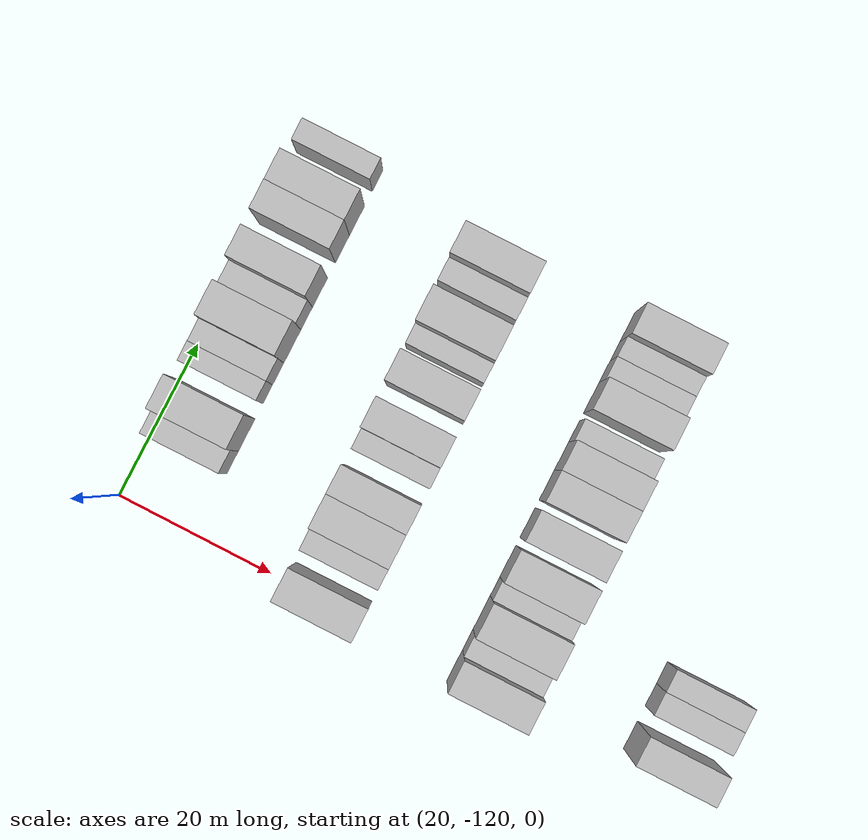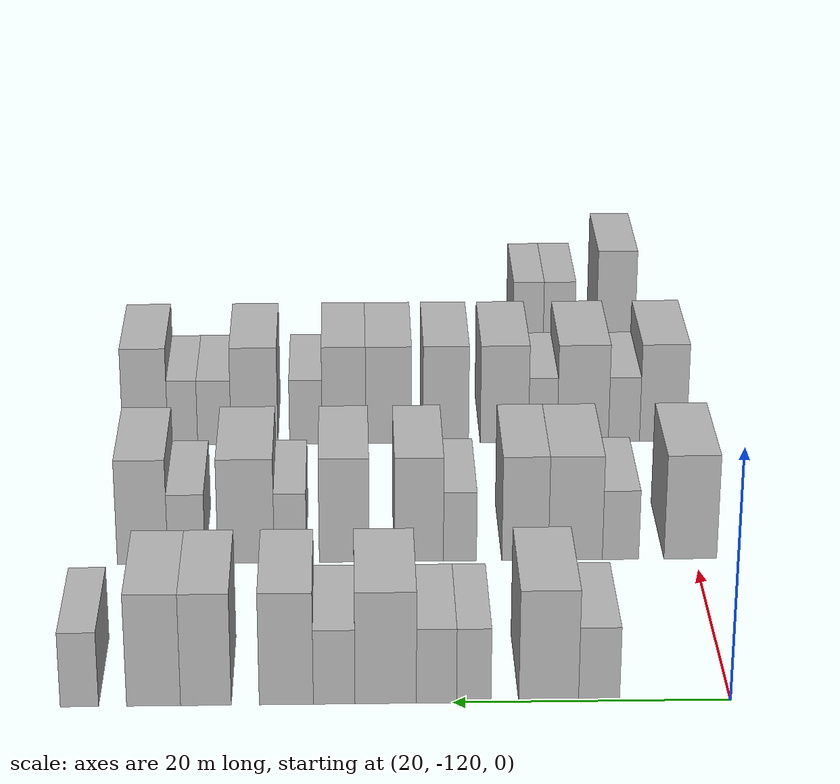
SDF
<sdf version="1.6">
 <world name="default">
  <model name="building_60">
   <static>1</static>
   <pose>25.0000 -110.4983 0 0.000000 0.000000 0.000000</pose>
   <link name="link">
    <pose>0 0 3.00 0 0 0</pose>
    <collision name="collision"><geometry><box><size>10.0000 2.9552 6.0000</size></box></geometry></collision>
    <visual name="visual">
     <cast_shadows>0</cast_shadows>
     <geometry><box><size>10.0000 2.9552 6.0000</size></box></geometry>
     <material>
      <script>
       <uri>model://HANNAS_wall/materials/scripts</uri>
       <uri>model://HANNAS_wall/materials/textures</uri>
       <name>vrc/HANNAS_wall</name>
      </script>
     </material>
    </visual>
   </link>
  </model>
  <model name="building_61">
   <static>1</static>
   <pose>25.0000 -106.8751 0 0.000000 0.000000 0.000000</pose>
   <link name="link">
    <pose>0 0 4.50 0 0 0</pose>
    <collision name="collision"><geometry><box><size>10.0000 4.2911 9.0000</size></box></geometry></collision>
    <visual name="visual">
     <cast_shadows>0</cast_shadows>
     <geometry><box><size>10.0000 4.2911 9.0000</size></box></geometry>
     <material>
      <script>
       <uri>model://HANNAS_wall/materials/scripts</uri>
       <uri>model://HANNAS_wall/materials/textures</uri>
       <name>vrc/HANNAS_wall</name>
      </script>
     </material>
    </visual>
   </link>
  </model>
  <model name="building_62">
   <static>1</static>
   <pose>25.0000 -101.4941 0 0.000000 0.000000 0.000000</pose>
   <link name="link">
    <pose>0 0 3.00 0 0 0</pose>
    <collision name="collision"><geometry><box><size>10.0000 2.4709 6.0000</size></box></geometry></collision>
    <visual name="visual">
     <cast_shadows>0</cast_shadows>
     <geometry><box><size>10.0000 2.4709 6.0000</size></box></geometry>
     <material>
      <script>
       <uri>model://HANNAS_wall/materials/scripts</uri>
       <uri>model://HANNAS_wall/materials/textures</uri>
       <name>vrc/HANNAS_wall</name>
      </script>
     </material>
    </visual>
   </link>
  </model>
  <model name="building_63">
   <static>1</static>
   <pose>25.0000 -98.8210 0 0.000000 0.000000 0.000000</pose>
   <link name="link">
    <pose>0 0 3.00 0 0 0</pose>
    <collision name="collision"><geometry><box><size>10.0000 2.8753 6.0000</size></box></geometry></collision>
    <visual name="visual">
     <cast_shadows>0</cast_shadows>
     <geometry><box><size>10.0000 2.8753 6.0000</size></box></geometry>
     <material>
      <script>
       <uri>model://HANNAS_wall/materials/scripts</uri>
       <uri>model://HANNAS_wall/materials/textures</uri>
       <name>vrc/HANNAS_wall</name>
      </script>
     </material>
    </visual>
   </link>
  </model>
  <model name="building_64">
   <static>1</static>
   <pose>25.0000 -95.1807 0 0.000000 0.000000 0.000000</pose>
   <link name="link">
    <pose>0 0 4.50 0 0 0</pose>
    <collision name="collision"><geometry><box><size>10.0000 4.4053 9.0000</size></box></geometry></collision>
    <visual name="visual">
     <cast_shadows>0</cast_shadows>
     <geometry><box><size>10.0000 4.4053 9.0000</size></box></geometry>
     <material>
      <script>
       <uri>model://HANNAS_wall/materials/scripts</uri>
       <uri>model://HANNAS_wall/materials/textures</uri>
       <name>vrc/HANNAS_wall</name>
      </script>
     </material>
    </visual>
   </link>
  </model>
  <model name="building_65">
   <static>1</static>
   <pose>25.0000 -91.4868 0 0.000000 0.000000 0.000000</pose>
   <link name="link">
    <pose>0 0 3.00 0 0 0</pose>
    <collision name="collision"><geometry><box><size>10.0000 2.9825 6.0000</size></box></geometry></collision>
    <visual name="visual">
     <cast_shadows>0</cast_shadows>
     <geometry><box><size>10.0000 2.9825 6.0000</size></box></geometry>
     <material>
      <script>
       <uri>model://HANNAS_wall/materials/scripts</uri>
       <uri>model://HANNAS_wall/materials/textures</uri>
       <name>vrc/HANNAS_wall</name>
      </script>
     </material>
    </visual>
   </link>
  </model>
  <model name="building_66">
   <static>1</static>
   <pose>25.0000 -88.0575 0 0.000000 0.000000 0.000000</pose>
   <link name="link">
    <pose>0 0 4.50 0 0 0</pose>
    <collision name="collision"><geometry><box><size>10.0000 3.8760 9.0000</size></box></geometry></collision>
    <visual name="visual">
     <cast_shadows>0</cast_shadows>
     <geometry><box><size>10.0000 3.8760 9.0000</size></box></geometry>
     <material>
      <script>
       <uri>model://HANNAS_wall/materials/scripts</uri>
       <uri>model://HANNAS_wall/materials/textures</uri>
       <name>vrc/HANNAS_wall</name>
      </script>
     </material>
    </visual>
   </link>
  </model>
  <model name="building_67">
   <static>1</static>
   <pose>25.0000 -82.3033 0 0.000000 0.000000 0.000000</pose>
   <link name="link">
    <pose>0 0 4.50 0 0 0</pose>
    <collision name="collision"><geometry><box><size>10.0000 3.6325 9.0000</size></box></geometry></collision>
    <visual name="visual">
     <cast_shadows>0</cast_shadows>
     <geometry><box><size>10.0000 3.6325 9.0000</size></box></geometry>
     <material>
      <script>
       <uri>model://HANNAS_wall/materials/scripts</uri>
       <uri>model://HANNAS_wall/materials/textures</uri>
       <name>vrc/HANNAS_wall</name>
      </script>
     </material>
    </visual>
   </link>
  </model>
  <model name="building_68">
   <static>1</static>
   <pose>25.0000 -78.5575 0 0.000000 0.000000 0.000000</pose>
   <link name="link">
    <pose>0 0 4.50 0 0 0</pose>
    <collision name="collision"><geometry><box><size>10.0000 3.8590 9.0000</size></box></geometry></collision>
    <visual name="visual">
     <cast_shadows>0</cast_shadows>
     <geometry><box><size>10.0000 3.8590 9.0000</size></box></geometry>
     <material>
      <script>
       <uri>model://HANNAS_wall/materials/scripts</uri>
       <uri>model://HANNAS_wall/materials/textures</uri>
       <name>vrc/HANNAS_wall</name>
      </script>
     </material>
    </visual>
   </link>
  </model>
  <model name="building_69">
   <static>1</static>
   <pose>25.0000 -73.2572 0 0.000000 0.000000 0.000000</pose>
   <link name="link">
    <pose>0 0 3.00 0 0 0</pose>
    <collision name="collision"><geometry><box><size>10.0000 2.7417 6.0000</size></box></geometry></collision>
    <visual name="visual">
     <cast_shadows>0</cast_shadows>
     <geometry><box><size>10.0000 2.7417 6.0000</size></box></geometry>
     <material>
      <script>
       <uri>model://HANNAS_wall/materials/scripts</uri>
       <uri>model://HANNAS_wall/materials/textures</uri>
       <name>vrc/HANNAS_wall</name>
      </script>
     </material>
    </visual>
   </link>
  </model>
  <model name="building_249">
   <static>1</static>
   <pose>47.0000 -119.5810 0 0.000000 0.000000 0.000000</pose>
   <link name="link">
    <pose>0 0 4.50 0 0 0</pose>
    <collision name="collision"><geometry><box><size>10.0000 4.1758 9.0000</size></box></geometry></collision>
    <visual name="visual">
     <cast_shadows>0</cast_shadows>
     <geometry><box><size>10.0000 4.1758 9.0000</size></box></geometry>
     <material>
      <script>
       <uri>model://HANNAS_wall/materials/scripts</uri>
       <uri>model://HANNAS_wall/materials/textures</uri>
       <name>vrc/HANNAS_wall</name>
      </script>
     </material>
    </visual>
   </link>
  </model>
  <model name="building_250">
   <static>1</static>
   <pose>47.0000 -114.0528 0 0.000000 0.000000 0.000000</pose>
   <link name="link">
    <pose>0 0 3.00 0 0 0</pose>
    <collision name="collision"><geometry><box><size>10.0000 2.8806 6.0000</size></box></geometry></collision>
    <visual name="visual">
     <cast_shadows>0</cast_shadows>
     <geometry><box><size>10.0000 2.8806 6.0000</size></box></geometry>
     <material>
      <script>
       <uri>model://HANNAS_wall/materials/scripts</uri>
       <uri>model://HANNAS_wall/materials/textures</uri>
       <name>vrc/HANNAS_wall</name>
      </script>
     </material>
    </visual>
   </link>
  </model>
  <model name="building_251">
   <static>1</static>
   <pose>47.0000 -110.4800 0 0.000000 0.000000 0.000000</pose>
   <link name="link">
    <pose>0 0 4.50 0 0 0</pose>
    <collision name="collision"><geometry><box><size>10.0000 4.2651 9.0000</size></box></geometry></collision>
    <visual name="visual">
     <cast_shadows>0</cast_shadows>
     <geometry><box><size>10.0000 4.2651 9.0000</size></box></geometry>
     <material>
      <script>
       <uri>model://HANNAS_wall/materials/scripts</uri>
       <uri>model://HANNAS_wall/materials/textures</uri>
       <name>vrc/HANNAS_wall</name>
      </script>
     </material>
    </visual>
   </link>
  </model>
  <model name="building_252">
   <static>1</static>
   <pose>47.0000 -106.5111 0 0.000000 0.000000 0.000000</pose>
   <link name="link">
    <pose>0 0 4.50 0 0 0</pose>
    <collision name="collision"><geometry><box><size>10.0000 3.6725 9.0000</size></box></geometry></collision>
    <visual name="visual">
     <cast_shadows>0</cast_shadows>
     <geometry><box><size>10.0000 3.6725 9.0000</size></box></geometry>
     <material>
      <script>
       <uri>model://HANNAS_wall/materials/scripts</uri>
       <uri>model://HANNAS_wall/materials/textures</uri>
       <name>vrc/HANNAS_wall</name>
      </script>
     </material>
    </visual>
   </link>
  </model>
  <model name="building_253">
   <static>1</static>
   <pose>47.0000 -101.3673 0 0.000000 0.000000 0.000000</pose>
   <link name="link">
    <pose>0 0 3.00 0 0 0</pose>
    <collision name="collision"><geometry><box><size>10.0000 2.6151 6.0000</size></box></geometry></collision>
    <visual name="visual">
     <cast_shadows>0</cast_shadows>
     <geometry><box><size>10.0000 2.6151 6.0000</size></box></geometry>
     <material>
      <script>
       <uri>model://HANNAS_wall/materials/scripts</uri>
       <uri>model://HANNAS_wall/materials/textures</uri>
       <name>vrc/HANNAS_wall</name>
      </script>
     </material>
    </visual>
   </link>
  </model>
  <model name="building_254">
   <static>1</static>
   <pose>47.0000 -98.1369 0 0.000000 0.000000 0.000000</pose>
   <link name="link">
    <pose>0 0 4.50 0 0 0</pose>
    <collision name="collision"><geometry><box><size>10.0000 3.8457 9.0000</size></box></geometry></collision>
    <visual name="visual">
     <cast_shadows>0</cast_shadows>
     <geometry><box><size>10.0000 3.8457 9.0000</size></box></geometry>
     <material>
      <script>
       <uri>model://HANNAS_wall/materials/scripts</uri>
       <uri>model://HANNAS_wall/materials/textures</uri>
       <name>vrc/HANNAS_wall</name>
      </script>
     </material>
    </visual>
   </link>
  </model>
  <model name="building_255">
   <static>1</static>
   <pose>47.0000 -92.2464 0 0.000000 0.000000 0.000000</pose>
   <link name="link">
    <pose>0 0 4.50 0 0 0</pose>
    <collision name="collision"><geometry><box><size>10.0000 3.9354 9.0000</size></box></geometry></collision>
    <visual name="visual">
     <cast_shadows>0</cast_shadows>
     <geometry><box><size>10.0000 3.9354 9.0000</size></box></geometry>
     <material>
      <script>
       <uri>model://HANNAS_wall/materials/scripts</uri>
       <uri>model://HANNAS_wall/materials/textures</uri>
       <name>vrc/HANNAS_wall</name>
      </script>
     </material>
    </visual>
   </link>
  </model>
  <model name="building_256">
   <static>1</static>
   <pose>47.0000 -88.0085 0 0.000000 0.000000 0.000000</pose>
   <link name="link">
    <pose>0 0 3.00 0 0 0</pose>
    <collision name="collision"><geometry><box><size>10.0000 2.5404 6.0000</size></box></geometry></collision>
    <visual name="visual">
     <cast_shadows>0</cast_shadows>
     <geometry><box><size>10.0000 2.5404 6.0000</size></box></geometry>
     <material>
      <script>
       <uri>model://HANNAS_wall/materials/scripts</uri>
       <uri>model://HANNAS_wall/materials/textures</uri>
       <name>vrc/HANNAS_wall</name>
      </script>
     </material>
    </visual>
   </link>
  </model>
  <model name="building_257">
   <static>1</static>
   <pose>47.0000 -84.5177 0 0.000000 0.000000 0.000000</pose>
   <link name="link">
    <pose>0 0 4.50 0 0 0</pose>
    <collision name="collision"><geometry><box><size>10.0000 4.4411 9.0000</size></box></geometry></collision>
    <visual name="visual">
     <cast_shadows>0</cast_shadows>
     <geometry><box><size>10.0000 4.4411 9.0000</size></box></geometry>
     <material>
      <script>
       <uri>model://HANNAS_wall/materials/scripts</uri>
       <uri>model://HANNAS_wall/materials/textures</uri>
       <name>vrc/HANNAS_wall</name>
      </script>
     </material>
    </visual>
   </link>
  </model>
  <model name="building_258">
   <static>1</static>
   <pose>47.0000 -79.8300 0 0.000000 0.000000 0.000000</pose>
   <link name="link">
    <pose>0 0 3.00 0 0 0</pose>
    <collision name="collision"><geometry><box><size>10.0000 2.9342 6.0000</size></box></geometry></collision>
    <visual name="visual">
     <cast_shadows>0</cast_shadows>
     <geometry><box><size>10.0000 2.9342 6.0000</size></box></geometry>
     <material>
      <script>
       <uri>model://HANNAS_wall/materials/scripts</uri>
       <uri>model://HANNAS_wall/materials/textures</uri>
       <name>vrc/HANNAS_wall</name>
      </script>
     </material>
    </visual>
   </link>
  </model>
  <model name="building_259">
   <static>1</static>
   <pose>47.0000 -76.3767 0 0.000000 0.000000 0.000000</pose>
   <link name="link">
    <pose>0 0 4.50 0 0 0</pose>
    <collision name="collision"><geometry><box><size>10.0000 3.9725 9.0000</size></box></geometry></collision>
    <visual name="visual">
     <cast_shadows>0</cast_shadows>
     <geometry><box><size>10.0000 3.9725 9.0000</size></box></geometry>
     <material>
      <script>
       <uri>model://HANNAS_wall/materials/scripts</uri>
       <uri>model://HANNAS_wall/materials/textures</uri>
       <name>vrc/HANNAS_wall</name>
      </script>
     </material>
    </visual>
   </link>
  </model>
  <model name="building_432">
   <static>1</static>
   <pose>69.0000 -119.7279 0 0.000000 0.000000 0.000000</pose>
   <link name="link">
    <pose>0 0 4.50 0 0 0</pose>
    <collision name="collision"><geometry><box><size>10.0000 4.0581 9.0000</size></box></geometry></collision>
    <visual name="visual">
     <cast_shadows>0</cast_shadows>
     <geometry><box><size>10.0000 4.0581 9.0000</size></box></geometry>
     <material>
      <script>
       <uri>model://HANNAS_wall/materials/scripts</uri>
       <uri>model://HANNAS_wall/materials/textures</uri>
       <name>vrc/HANNAS_wall</name>
      </script>
     </material>
    </visual>
   </link>
  </model>
  <model name="building_433">
   <static>1</static>
   <pose>69.0000 -116.3575 0 0.000000 0.000000 0.000000</pose>
   <link name="link">
    <pose>0 0 3.00 0 0 0</pose>
    <collision name="collision"><geometry><box><size>10.0000 2.6828 6.0000</size></box></geometry></collision>
    <visual name="visual">
     <cast_shadows>0</cast_shadows>
     <geometry><box><size>10.0000 2.6828 6.0000</size></box></geometry>
     <material>
      <script>
       <uri>model://HANNAS_wall/materials/scripts</uri>
       <uri>model://HANNAS_wall/materials/textures</uri>
       <name>vrc/HANNAS_wall</name>
      </script>
     </material>
    </visual>
   </link>
  </model>
  <model name="building_434">
   <static>1</static>
   <pose>69.0000 -112.8075 0 0.000000 0.000000 0.000000</pose>
   <link name="link">
    <pose>0 0 4.50 0 0 0</pose>
    <collision name="collision"><geometry><box><size>10.0000 4.4172 9.0000</size></box></geometry></collision>
    <visual name="visual">
     <cast_shadows>0</cast_shadows>
     <geometry><box><size>10.0000 4.4172 9.0000</size></box></geometry>
     <material>
      <script>
       <uri>model://HANNAS_wall/materials/scripts</uri>
       <uri>model://HANNAS_wall/materials/textures</uri>
       <name>vrc/HANNAS_wall</name>
      </script>
     </material>
    </visual>
   </link>
  </model>
  <model name="building_435">
   <static>1</static>
   <pose>69.0000 -109.3632 0 0.000000 0.000000 0.000000</pose>
   <link name="link">
    <pose>0 0 3.00 0 0 0</pose>
    <collision name="collision"><geometry><box><size>10.0000 2.4714 6.0000</size></box></geometry></collision>
    <visual name="visual">
     <cast_shadows>0</cast_shadows>
     <geometry><box><size>10.0000 2.4714 6.0000</size></box></geometry>
     <material>
      <script>
       <uri>model://HANNAS_wall/materials/scripts</uri>
       <uri>model://HANNAS_wall/materials/textures</uri>
       <name>vrc/HANNAS_wall</name>
      </script>
     </material>
    </visual>
   </link>
  </model>
  <model name="building_436">
   <static>1</static>
   <pose>69.0000 -106.0511 0 0.000000 0.000000 0.000000</pose>
   <link name="link">
    <pose>0 0 4.50 0 0 0</pose>
    <collision name="collision"><geometry><box><size>10.0000 4.1530 9.0000</size></box></geometry></collision>
    <visual name="visual">
     <cast_shadows>0</cast_shadows>
     <geometry><box><size>10.0000 4.1530 9.0000</size></box></geometry>
     <material>
      <script>
       <uri>model://HANNAS_wall/materials/scripts</uri>
       <uri>model://HANNAS_wall/materials/textures</uri>
       <name>vrc/HANNAS_wall</name>
      </script>
     </material>
    </visual>
   </link>
  </model>
  <model name="building_437">
   <static>1</static>
   <pose>69.0000 -101.0158 0 0.000000 0.000000 0.000000</pose>
   <link name="link">
    <pose>0 0 4.50 0 0 0</pose>
    <collision name="collision"><geometry><box><size>10.0000 3.9175 9.0000</size></box></geometry></collision>
    <visual name="visual">
     <cast_shadows>0</cast_shadows>
     <geometry><box><size>10.0000 3.9175 9.0000</size></box></geometry>
     <material>
      <script>
       <uri>model://HANNAS_wall/materials/scripts</uri>
       <uri>model://HANNAS_wall/materials/textures</uri>
       <name>vrc/HANNAS_wall</name>
      </script>
     </material>
    </visual>
   </link>
  </model>
  <model name="building_438">
   <static>1</static>
   <pose>69.0000 -96.0924 0 0.000000 0.000000 0.000000</pose>
   <link name="link">
    <pose>0 0 4.50 0 0 0</pose>
    <collision name="collision"><geometry><box><size>10.0000 3.9292 9.0000</size></box></geometry></collision>
    <visual name="visual">
     <cast_shadows>0</cast_shadows>
     <geometry><box><size>10.0000 3.9292 9.0000</size></box></geometry>
     <material>
      <script>
       <uri>model://HANNAS_wall/materials/scripts</uri>
       <uri>model://HANNAS_wall/materials/textures</uri>
       <name>vrc/HANNAS_wall</name>
      </script>
     </material>
    </visual>
   </link>
  </model>
  <model name="building_439">
   <static>1</static>
   <pose>69.0000 -92.2589 0 0.000000 0.000000 0.000000</pose>
   <link name="link">
    <pose>0 0 4.50 0 0 0</pose>
    <collision name="collision"><geometry><box><size>10.0000 3.7379 9.0000</size></box></geometry></collision>
    <visual name="visual">
     <cast_shadows>0</cast_shadows>
     <geometry><box><size>10.0000 3.7379 9.0000</size></box></geometry>
     <material>
      <script>
       <uri>model://HANNAS_wall/materials/scripts</uri>
       <uri>model://HANNAS_wall/materials/textures</uri>
       <name>vrc/HANNAS_wall</name>
      </script>
     </material>
    </visual>
   </link>
  </model>
  <model name="building_440">
   <static>1</static>
   <pose>69.0000 -88.9890 0 0.000000 0.000000 0.000000</pose>
   <link name="link">
    <pose>0 0 3.00 0 0 0</pose>
    <collision name="collision"><geometry><box><size>10.0000 2.8019 6.0000</size></box></geometry></collision>
    <visual name="visual">
     <cast_shadows>0</cast_shadows>
     <geometry><box><size>10.0000 2.8019 6.0000</size></box></geometry>
     <material>
      <script>
       <uri>model://HANNAS_wall/materials/scripts</uri>
       <uri>model://HANNAS_wall/materials/textures</uri>
       <name>vrc/HANNAS_wall</name>
      </script>
     </material>
    </visual>
   </link>
  </model>
  <model name="building_441">
   <static>1</static>
   <pose>69.0000 -84.5797 0 0.000000 0.000000 0.000000</pose>
   <link name="link">
    <pose>0 0 4.50 0 0 0</pose>
    <collision name="collision"><geometry><box><size>10.0000 4.0167 9.0000</size></box></geometry></collision>
    <visual name="visual">
     <cast_shadows>0</cast_shadows>
     <geometry><box><size>10.0000 4.0167 9.0000</size></box></geometry>
     <material>
      <script>
       <uri>model://HANNAS_wall/materials/scripts</uri>
       <uri>model://HANNAS_wall/materials/textures</uri>
       <name>vrc/HANNAS_wall</name>
      </script>
     </material>
    </visual>
   </link>
  </model>
  <model name="building_442">
   <static>1</static>
   <pose>69.0000 -81.1334 0 0.000000 0.000000 0.000000</pose>
   <link name="link">
    <pose>0 0 3.00 0 0 0</pose>
    <collision name="collision"><geometry><box><size>10.0000 2.8758 6.0000</size></box></geometry></collision>
    <visual name="visual">
     <cast_shadows>0</cast_shadows>
     <geometry><box><size>10.0000 2.8758 6.0000</size></box></geometry>
     <material>
      <script>
       <uri>model://HANNAS_wall/materials/scripts</uri>
       <uri>model://HANNAS_wall/materials/textures</uri>
       <name>vrc/HANNAS_wall</name>
      </script>
     </material>
    </visual>
   </link>
  </model>
  <model name="building_443">
   <static>1</static>
   <pose>69.0000 -78.4243 0 0.000000 0.000000 0.000000</pose>
   <link name="link">
    <pose>0 0 3.00 0 0 0</pose>
    <collision name="collision"><geometry><box><size>10.0000 2.5425 6.0000</size></box></geometry></collision>
    <visual name="visual">
     <cast_shadows>0</cast_shadows>
     <geometry><box><size>10.0000 2.5425 6.0000</size></box></geometry>
     <material>
      <script>
       <uri>model://HANNAS_wall/materials/scripts</uri>
       <uri>model://HANNAS_wall/materials/textures</uri>
       <name>vrc/HANNAS_wall</name>
      </script>
     </material>
    </visual>
   </link>
  </model>
  <model name="building_444">
   <static>1</static>
   <pose>69.0000 -75.2245 0 0.000000 0.000000 0.000000</pose>
   <link name="link">
    <pose>0 0 4.50 0 0 0</pose>
    <collision name="collision"><geometry><box><size>10.0000 3.8570 9.0000</size></box></geometry></collision>
    <visual name="visual">
     <cast_shadows>0</cast_shadows>
     <geometry><box><size>10.0000 3.8570 9.0000</size></box></geometry>
     <material>
      <script>
       <uri>model://HANNAS_wall/materials/scripts</uri>
       <uri>model://HANNAS_wall/materials/textures</uri>
       <name>vrc/HANNAS_wall</name>
      </script>
     </material>
    </visual>
   </link>
  </model>
  <model name="building_618">
   <static>1</static>
   <pose>91.0000 -117.5998 0 0.000000 0.000000 0.000000</pose>
   <link name="link">
    <pose>0 0 4.50 0 0 0</pose>
    <collision name="collision"><geometry><box><size>10.0000 3.6157 9.0000</size></box></geometry></collision>
    <visual name="visual">
     <cast_shadows>0</cast_shadows>
     <geometry><box><size>10.0000 3.6157 9.0000</size></box></geometry>
     <material>
      <script>
       <uri>model://HANNAS_wall/materials/scripts</uri>
       <uri>model://HANNAS_wall/materials/textures</uri>
       <name>vrc/HANNAS_wall</name>
      </script>
     </material>
    </visual>
   </link>
  </model>
  <model name="building_619">
   <static>1</static>
   <pose>91.0000 -112.3246 0 0.000000 0.000000 0.000000</pose>
   <link name="link">
    <pose>0 0 3.00 0 0 0</pose>
    <collision name="collision"><geometry><box><size>10.0000 2.9347 6.0000</size></box></geometry></collision>
    <visual name="visual">
     <cast_shadows>0</cast_shadows>
     <geometry><box><size>10.0000 2.9347 6.0000</size></box></geometry>
     <material>
      <script>
       <uri>model://HANNAS_wall/materials/scripts</uri>
       <uri>model://HANNAS_wall/materials/textures</uri>
       <name>vrc/HANNAS_wall</name>
      </script>
     </material>
    </visual>
   </link>
  </model>
  <model name="building_620">
   <static>1</static>
   <pose>91.0000 -109.4368 0 0.000000 0.000000 0.000000</pose>
   <link name="link">
    <pose>0 0 3.00 0 0 0</pose>
    <collision name="collision"><geometry><box><size>10.0000 2.8411 6.0000</size></box></geometry></collision>
    <visual name="visual">
     <cast_shadows>0</cast_shadows>
     <geometry><box><size>10.0000 2.8411 6.0000</size></box></geometry>
     <material>
      <script>
       <uri>model://HANNAS_wall/materials/scripts</uri>
       <uri>model://HANNAS_wall/materials/textures</uri>
       <name>vrc/HANNAS_wall</name>
      </script>
     </material>
    </visual>
   </link>
  </model>
 </world>
</sdf>
